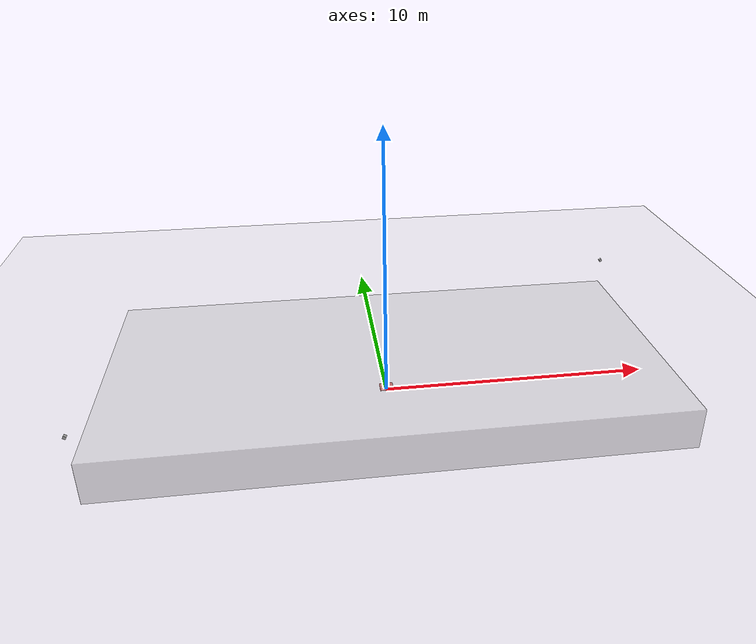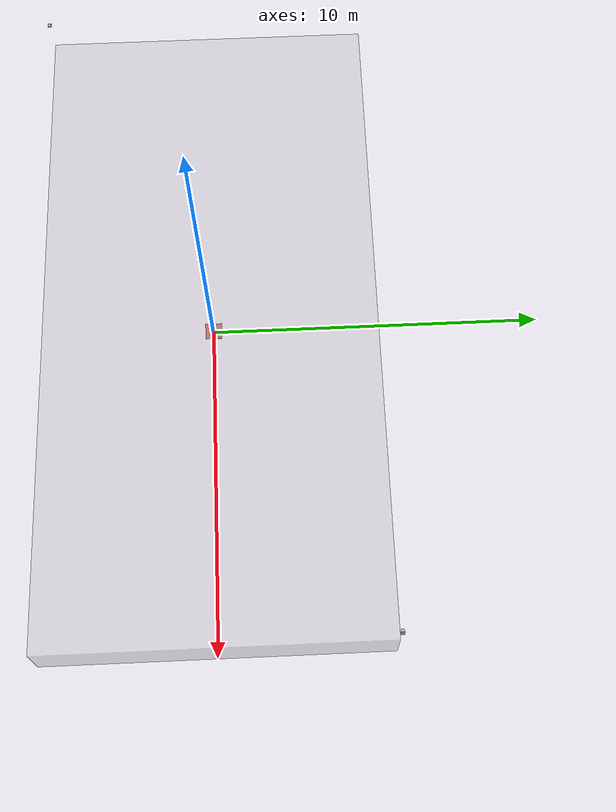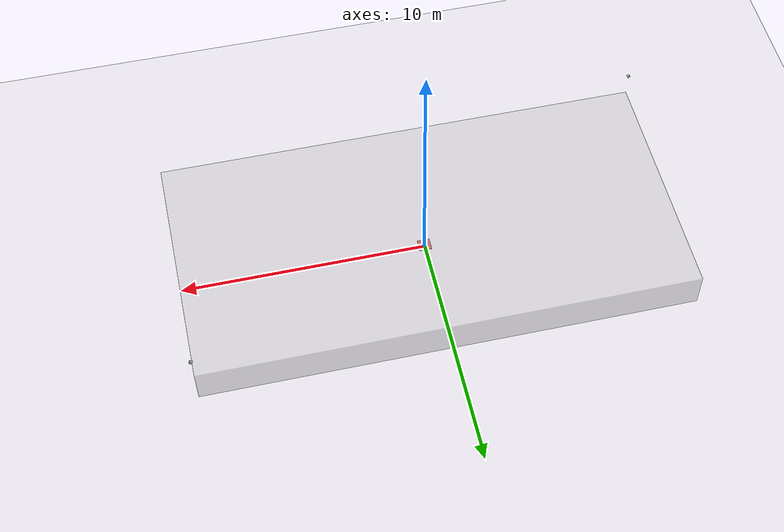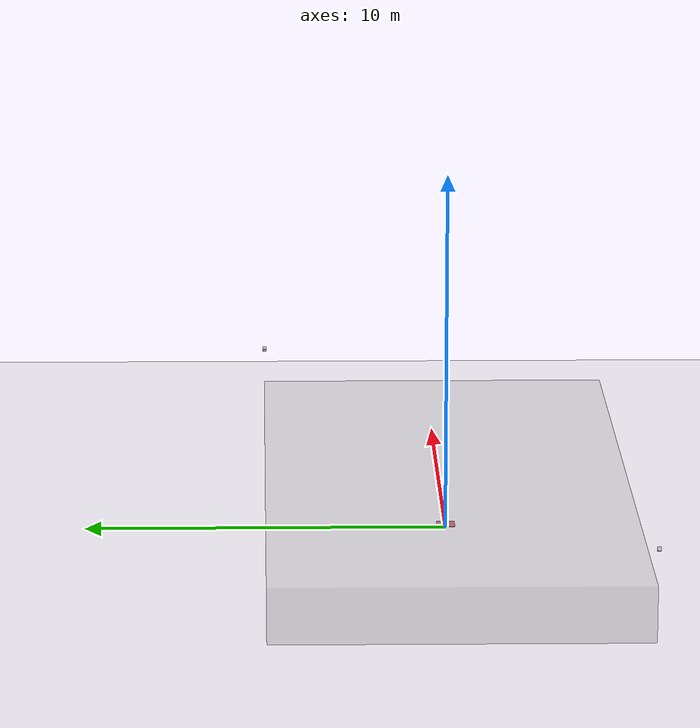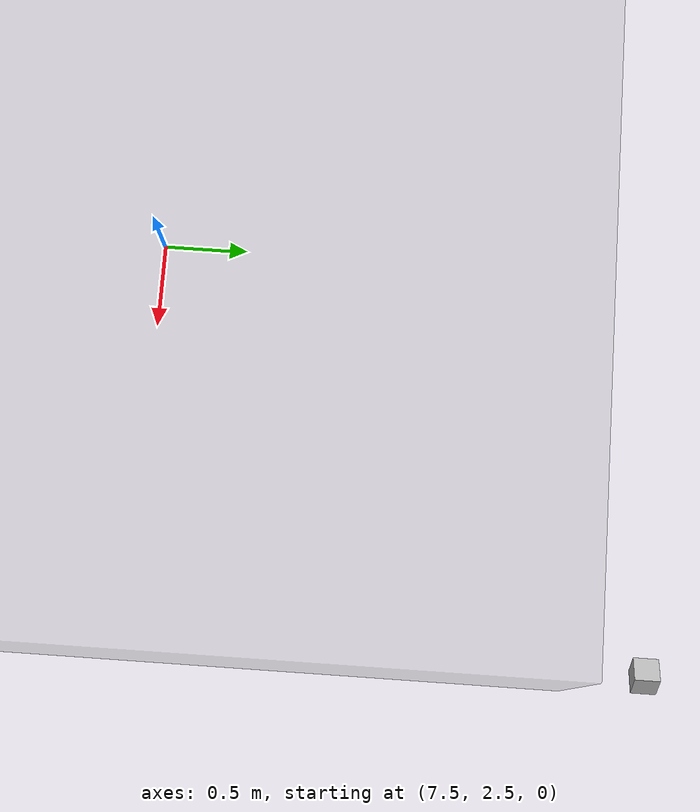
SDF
<sdf version="1.6">
 <world name="greenhouse_world">
  <physics name="default_physics" default="0" type="ode">
   <max_step_size>0.001</max_step_size>
   <real_time_factor>1</real_time_factor>
   <real_time_update_rate>1000</real_time_update_rate>
  </physics>
  <light type="directional" name="sun">
   <pose>0 0 10 0 0 0</pose>
   <diffuse>0.8 0.8 0.8 1</diffuse>
   <specular>0.2 0.2 0.2 1</specular>
   <attenuation>
    <range>1000</range>
    <constant>0.9</constant>
    <linear>0.01</linear>
    <quadratic>0.001</quadratic>
   </attenuation>
   <direction>-0.5 0.1 -0.9</direction>
  </light>
  <model name="greenhouse">
   <static>true</static>
   <link name="walls">
    <collision name="collision"><geometry><box><size>20 10 3</size></box></geometry></collision>
    <visual name="visual">
     <geometry><box><size>20 10 3</size></box></geometry>
     <material>
      <script><uri>file://media/materials/scripts/gazebo.material</uri><name>Gazebo/Glass</name></script>
     </material>
    </visual>
   </link>
  </model>
  <model name="ground_plane">
   <static>true</static>
   <link name="link">
    <collision name="collision">
     <geometry><plane><normal>0 0 1</normal><size>100 100</size></plane></geometry>
     <surface><friction><ode><mu>100</mu><mu2>50</mu2></ode></friction></surface>
    </collision>
    <visual name="visual">
     <cast_shadows>false</cast_shadows>
     <geometry><plane><normal>0 0 1</normal><size>100 100</size></plane></geometry>
     <material>
      <script><uri>file://media/materials/scripts/gazebo.material</uri><name>Gazebo/Grey</name></script>
     </material>
    </visual>
   </link>
  </model>
  <model name="drone_start">
   <static>true</static>
   <link name="link">
    <visual name="visual">
     <geometry><box><size>0.5 0.5 0.01</size></box></geometry>
     <material>
      <script><uri>file://media/materials/scripts/gazebo.material</uri><name>Gazebo/Red</name></script>
     </material>
    </visual>
   </link>
   <pose>0 0 0.1 0 0 0</pose>
  </model>
  <model name="camera1">
   <static>true</static>
   <pose>10 5 2.5 0 0.5 3.14</pose>
   <link name="link">
    <visual name="visual"><geometry><box><size>0.1 0.1 0.1</size></box></geometry></visual>
    <sensor name="camera" type="camera">
     <camera>
      <horizontal_fov>1.047</horizontal_fov>
      <image><width>640</width><height>480</height></image>
      <clip><near>0.1</near><far>100</far></clip>
     </camera>
     <always_on>1</always_on>
     <update_rate>30</update_rate>
     <visualize>true</visualize>
    </sensor>
   </link>
  </model>
  <model name="camera2">
   <static>true</static>
   <pose>-10 -5 2.5 0 0.5 0</pose>
   <link name="link">
    <visual name="visual"><geometry><box><size>0.1 0.1 0.1</size></box></geometry></visual>
    <sensor name="camera" type="camera">
     <camera>
      <horizontal_fov>1.047</horizontal_fov>
      <image><width>640</width><height>480</height></image>
      <clip><near>0.1</near><far>100</far></clip>
     </camera>
     <always_on>1</always_on>
     <update_rate>30</update_rate>
     <visualize>true</visualize>
    </sensor>
   </link>
  </model>
  <atmosphere type="adiabatic"/>
  <plugin name="environment_control" filename="libEnvironmentControlPlugin.so">
   <temperature>25.0</temperature>
   <humidity>60.0</humidity>
   <co2_level>400.0</co2_level>
  </plugin>
  <gravity>0 0 -9.8</gravity>
  <magnetic_field>6e-06 2.3e-05 -4.2e-05</magnetic_field>
  <wind><linear_velocity>0.5 0 0</linear_velocity></wind>
 </world>
</sdf>
